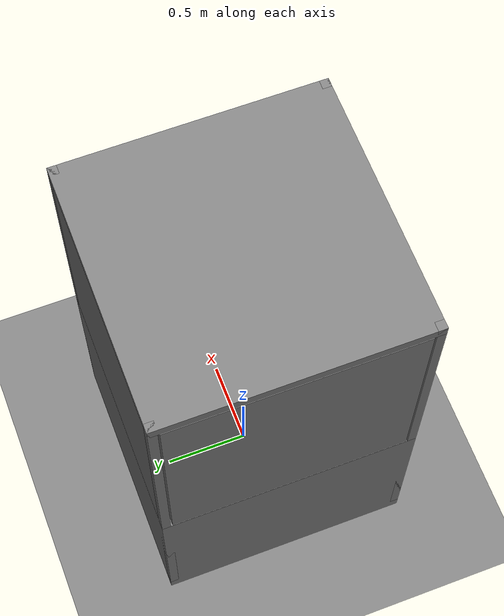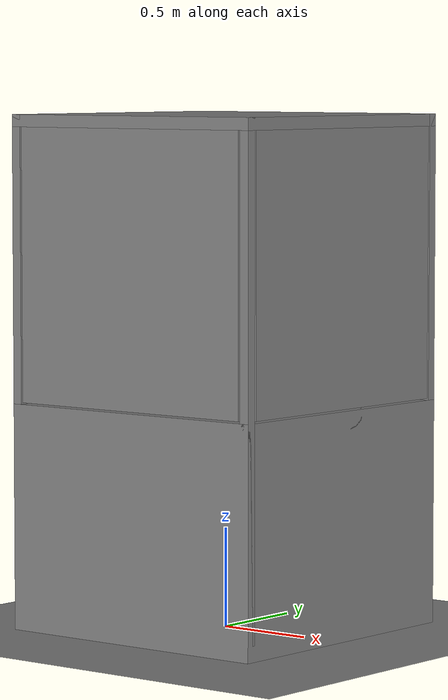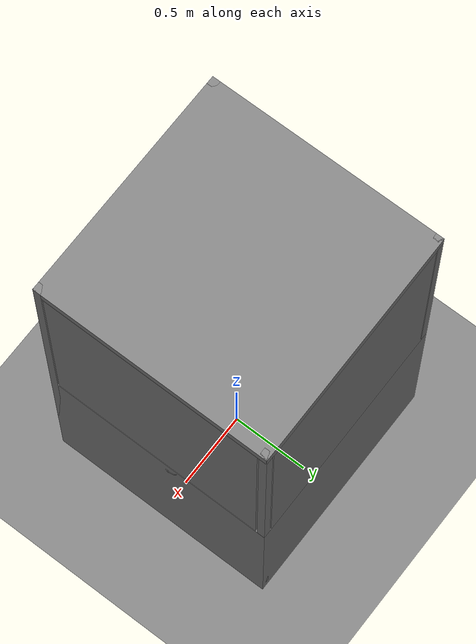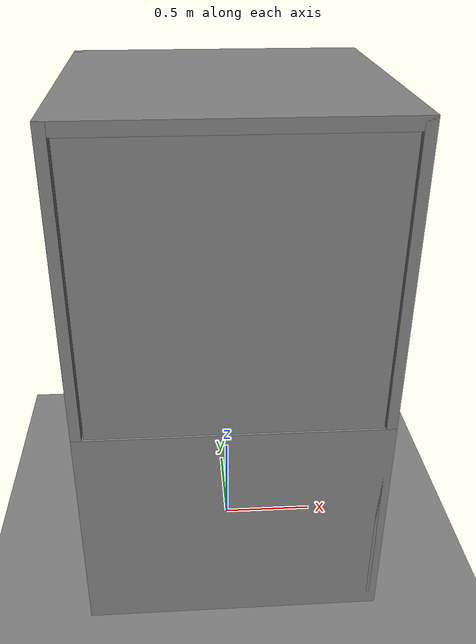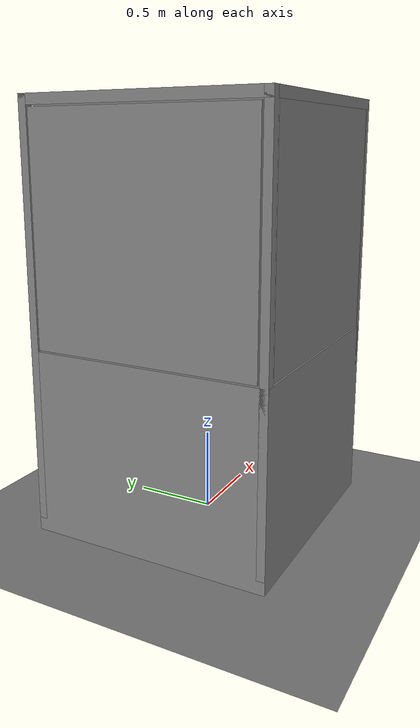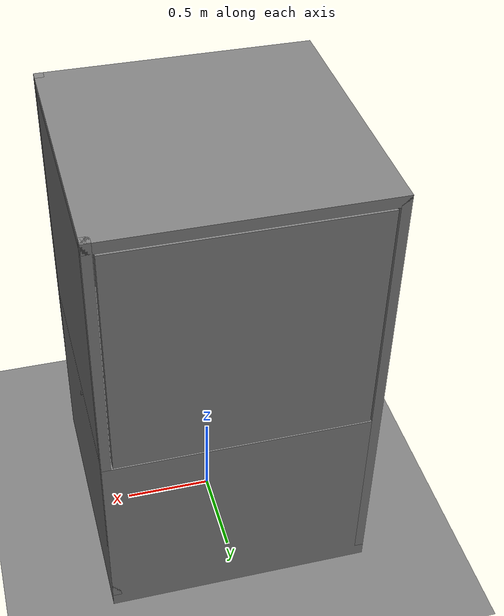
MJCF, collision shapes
<mujoco model="aic_world">
  <compiler angle="radian"/>

  <option gravity="0 0 -9.8" magnetic="5.5645e-06 2.28758e-05 -4.23884e-05"/>

  <visual>
    <headlight ambient="0 0 0" diffuse="0 0 0" specular="0 0 0"/>
  </visual>

  <default>
    <default class="world_default"/>
    <default class="cable_default">
      <joint damping="0.1"/>
    </default>
  </default>

  <extension>
    <plugin plugin="mujoco.elasticity.cable">
      <instance name="composite">
        <config key="twist" value="1e2"/>
        <config key="bend" value="4e1"/>
      </instance>
    </plugin>
  </extension>

  <asset>
    <texture type="2d" colorspace="linear" name="texture_6134dea747d444d9fb5f9afccdccd179a5c3afbe209ed6fdaedcbd8639717e9a_floor_visual_Plane" file="6134dea747d444d9fb5f9afccdccd179a5c3afbe209ed6fdaedcbd8639717e9a_floor_visual_b3a94635-54d6beff6424435d3828cb4c8a1278d9ea3964b0.png"/>
    <texture type="2d" colorspace="linear" name="texture_1a8d320a5d570ec6df97fbb8031a6b90f8651400f3185bf3b33f7e5cf29fb96e_sc_plug_visual_merged_0" file="1a8d320a5d570ec6df97fbb8031a6b90f8651400f3185bf3b33f7e5cf29fb96e_sc_plug_visual_5875f865-48f62b2f4840d852c7f39a01e6c183037dc1485b.png"/>
    <texture type="2d" colorspace="linear" name="texture_3c71e6fdde3349dbfec37505120cc036c9a09c068036dcd865c1ff3d0336a4d3_lc_plug_visual_merged_0" file="3c71e6fdde3349dbfec37505120cc036c9a09c068036dcd865c1ff3d0336a4d3_lc_plug_visual_03dabf32-0905e8a8aa368516e682f6ec84258100cdb4efef.png"/>
    <texture type="2d" colorspace="linear" name="texture_afe088fe8fb1373dee592578e0901b7a74fc4c287a45a74ecb852e563b4cc83e_sfp_module_visual_Body.005" file="afe088fe8fb1373dee592578e0901b7a74fc4c287a45a74ecb852e563b4cc83e_sfp_module_visual_8fc63b58-7471eafc55dcb668ae68adfe70a147b363ba3be9.png"/>
    <texture type="2d" colorspace="linear" name="texture_afe088fe8fb1373dee592578e0901b7a74fc4c287a45a74ecb852e563b4cc83e_sfp_module_visual_Body.005_1" file="afe088fe8fb1373dee592578e0901b7a74fc4c287a45a74ecb852e563b4cc83e_sfp_module_visual_1f09e86a-a4dc4a72bd6e778067310898a5c179607fd78966.png"/>
    <material name="material_f81430f844b7fdcbe82ef96ca64dddb6e07a165b85771d251fb3654027d6cc5b_enclosure_visual_V1014952.001" class="world_default" shininess="30" rgba="0.290196 0.290196 0.290196 1"/>
    <material name="material_f81430f844b7fdcbe82ef96ca64dddb6e07a165b85771d251fb3654027d6cc5b_enclosure_visual_V1014952.001_1" class="world_default" shininess="30" rgba="0.129412 0.129412 0.133333 1"/>
    <material name="material_f81430f844b7fdcbe82ef96ca64dddb6e07a165b85771d251fb3654027d6cc5b_light_visual_Plane.001" class="world_default" shininess="30" rgba="0.5 0.5 0.5 1"/>
    <material name="material_6134dea747d444d9fb5f9afccdccd179a5c3afbe209ed6fdaedcbd8639717e9a_floor_visual_Plane" class="world_default" texture="texture_6134dea747d444d9fb5f9afccdccd179a5c3afbe209ed6fdaedcbd8639717e9a_floor_visual_Plane" shininess="30" rgba="0.5 0.5 0.5 1"/>
    <material name="material_6134dea747d444d9fb5f9afccdccd179a5c3afbe209ed6fdaedcbd8639717e9a_walls_visual_Curve.001" class="world_default" shininess="30" rgba="0.0196078 0.0196078 0.0196078 1"/>
    <material name="material_6134dea747d444d9fb5f9afccdccd179a5c3afbe209ed6fdaedcbd8639717e9a_walls_visual_merged_1" class="world_default" shininess="30" rgba="0.262745 0.262745 0.262745 1"/>
    <material name="material_6134dea747d444d9fb5f9afccdccd179a5c3afbe209ed6fdaedcbd8639717e9a_walls_visual_Plane.003_1" class="world_default" shininess="30" rgba="0.8 0.8 0.8 1"/>
    <material name="material_6134dea747d444d9fb5f9afccdccd179a5c3afbe209ed6fdaedcbd8639717e9a_walls_visual_Plane.002" class="world_default" shininess="30" rgba="0.207843 0.207843 0.207843 1"/>
    <material name="material_adc5cf37bbd3c376b4a080ef391065cbfbfa5092e17bbd6a523fbf7f969d9ef2_base_visual_ISO_4762_-_M3_x_8.019" class="world_default" shininess="30" rgba="0.0352941 0.0352941 0.0313726 1"/>
    <material name="material_adc5cf37bbd3c376b4a080ef391065cbfbfa5092e17bbd6a523fbf7f969d9ef2_base_visual_ISO_4762_-_M3_x_8.019_1" class="world_default" shininess="30" rgba="0.0313726 0.0313726 0.0313726 1"/>
    <material name="material_adc5cf37bbd3c376b4a080ef391065cbfbfa5092e17bbd6a523fbf7f969d9ef2_base_visual_ISO_4762_-_M3_x_8.019_2" class="world_default" shininess="30" rgba="0.215686 0 0.215686 1"/>
    <material name="material_1a8d320a5d570ec6df97fbb8031a6b90f8651400f3185bf3b33f7e5cf29fb96e_sc_plug_visual_merged_0" class="world_default" texture="texture_1a8d320a5d570ec6df97fbb8031a6b90f8651400f3185bf3b33f7e5cf29fb96e_sc_plug_visual_merged_0" shininess="30" rgba="0.5 0.5 0.5 1"/>
    <material name="material_3c71e6fdde3349dbfec37505120cc036c9a09c068036dcd865c1ff3d0336a4d3_lc_plug_visual_merged_0" class="world_default" texture="texture_3c71e6fdde3349dbfec37505120cc036c9a09c068036dcd865c1ff3d0336a4d3_lc_plug_visual_merged_0" shininess="30" rgba="0.5 0.5 0.5 1"/>
    <material name="material_afe088fe8fb1373dee592578e0901b7a74fc4c287a45a74ecb852e563b4cc83e_sfp_module_visual_Body.005" class="world_default" texture="texture_afe088fe8fb1373dee592578e0901b7a74fc4c287a45a74ecb852e563b4cc83e_sfp_module_visual_Body.005" shininess="30" rgba="0.5 0.5 0.5 1"/>
    <material name="material_afe088fe8fb1373dee592578e0901b7a74fc4c287a45a74ecb852e563b4cc83e_sfp_module_visual_Body.005_1" class="world_default" texture="texture_afe088fe8fb1373dee592578e0901b7a74fc4c287a45a74ecb852e563b4cc83e_sfp_module_visual_Body.005_1" shininess="30" rgba="0.5 0.5 0.5 1"/>
    <mesh name="f81430f844b7fdcbe82ef96ca64dddb6e07a165b85771d251fb3654027d6cc5b_enclosure_visual_V1014952.001" class="world_default" content_type="model/obj" file="f81430f844b7fdcbe82ef96ca64dddb6e07a165b85771d251fb3654027d6cc5b_enclosure_visual_V1014952.001-c990efe7b9dfe87aa065fd6eb3960ce051ae2aef.obj" inertia="shell"/>
    <mesh name="f81430f844b7fdcbe82ef96ca64dddb6e07a165b85771d251fb3654027d6cc5b_enclosure_visual_V1014952.001_1" class="world_default" content_type="model/obj" file="f81430f844b7fdcbe82ef96ca64dddb6e07a165b85771d251fb3654027d6cc5b_enclosure_visual_V1014952.001_1-807e07de06af157c84b994a232617507a7059420.obj" inertia="shell"/>
    <mesh name="f81430f844b7fdcbe82ef96ca64dddb6e07a165b85771d251fb3654027d6cc5b_light_visual_Plane.001" class="world_default" content_type="model/obj" file="f81430f844b7fdcbe82ef96ca64dddb6e07a165b85771d251fb3654027d6cc5b_light_visual_Plane.001-a8a774a80bc239d73769a498eae528b206eebcb0.obj" inertia="shell"/>
    <mesh name="6134dea747d444d9fb5f9afccdccd179a5c3afbe209ed6fdaedcbd8639717e9a_floor_visual_Plane" class="world_default" content_type="model/obj" file="6134dea747d444d9fb5f9afccdccd179a5c3afbe209ed6fdaedcbd8639717e9a_floor_visual_Plane-4dc7f6150ad7c239769a0860a01efb2015657aea.obj" inertia="shell"/>
    <mesh name="6134dea747d444d9fb5f9afccdccd179a5c3afbe209ed6fdaedcbd8639717e9a_walls_visual_Curve.001" class="world_default" content_type="model/obj" file="6134dea747d444d9fb5f9afccdccd179a5c3afbe209ed6fdaedcbd8639717e9a_walls_visual_Curve.001-4d7c79ac2e958832fdb15589262141ca1b80d3a5.obj" inertia="shell"/>
    <mesh name="6134dea747d444d9fb5f9afccdccd179a5c3afbe209ed6fdaedcbd8639717e9a_walls_visual_merged_1" class="world_default" content_type="model/obj" file="6134dea747d444d9fb5f9afccdccd179a5c3afbe209ed6fdaedcbd8639717e9a_walls_visual_merged_1-359a22140d528747936e80bedf90e1437a177a9f.obj" inertia="shell"/>
    <mesh name="6134dea747d444d9fb5f9afccdccd179a5c3afbe209ed6fdaedcbd8639717e9a_walls_visual_Plane.003_1" class="world_default" content_type="model/obj" file="6134dea747d444d9fb5f9afccdccd179a5c3afbe209ed6fdaedcbd8639717e9a_walls_visual_Plane.003_1-cd05ed21fa19a2784fb772d7519abf7c31c8b85f.obj" inertia="shell"/>
    <mesh name="6134dea747d444d9fb5f9afccdccd179a5c3afbe209ed6fdaedcbd8639717e9a_walls_visual_Plane.002" class="world_default" content_type="model/obj" file="6134dea747d444d9fb5f9afccdccd179a5c3afbe209ed6fdaedcbd8639717e9a_walls_visual_Plane.002-ee4f781765eec46c2256d941981732d4b1857f24.obj" inertia="shell"/>
    <mesh name="adc5cf37bbd3c376b4a080ef391065cbfbfa5092e17bbd6a523fbf7f969d9ef2_base_visual_ISO_4762_-_M3_x_8.019" class="world_default" content_type="model/obj" file="adc5cf37bbd3c376b4a080ef391065cbfbfa5092e17bbd6a523fbf7f969d9ef2_base_visual_ISO_4762_-_M3_x_8.019-f814bb518c42769543ab6246809f3fe4af5c2b64.obj" inertia="shell"/>
    <mesh name="adc5cf37bbd3c376b4a080ef391065cbfbfa5092e17bbd6a523fbf7f969d9ef2_base_visual_ISO_4762_-_M3_x_8.019_1" class="world_default" content_type="model/obj" file="adc5cf37bbd3c376b4a080ef391065cbfbfa5092e17bbd6a523fbf7f969d9ef2_base_visual_ISO_4762_-_M3_x_8.019_1-0b276ba9910a7642121235b62d2afc47c3995782.obj" inertia="shell"/>
    <mesh name="adc5cf37bbd3c376b4a080ef391065cbfbfa5092e17bbd6a523fbf7f969d9ef2_base_visual_ISO_4762_-_M3_x_8.019_2" class="world_default" content_type="model/obj" file="adc5cf37bbd3c376b4a080ef391065cbfbfa5092e17bbd6a523fbf7f969d9ef2_base_visual_ISO_4762_-_M3_x_8.019_2-7b96569be9572803417c5650ee83c9c883b44191.obj" inertia="shell"/>
    <mesh name="1a8d320a5d570ec6df97fbb8031a6b90f8651400f3185bf3b33f7e5cf29fb96e_sc_plug_visual_merged_0" class="world_default" content_type="model/obj" file="1a8d320a5d570ec6df97fbb8031a6b90f8651400f3185bf3b33f7e5cf29fb96e_sc_plug_visual_merged_0-67f94accf247f722dd4954d7448d7956402901f2.obj" inertia="shell"/>
    <mesh name="3c71e6fdde3349dbfec37505120cc036c9a09c068036dcd865c1ff3d0336a4d3_lc_plug_visual_merged_0" class="world_default" content_type="model/obj" file="3c71e6fdde3349dbfec37505120cc036c9a09c068036dcd865c1ff3d0336a4d3_lc_plug_visual_merged_0-fdaf59710fc3cc118a7df05add4ff4205edda4ef.obj" inertia="shell"/>
    <mesh name="afe088fe8fb1373dee592578e0901b7a74fc4c287a45a74ecb852e563b4cc83e_sfp_module_visual_Body.005" class="world_default" content_type="model/obj" file="afe088fe8fb1373dee592578e0901b7a74fc4c287a45a74ecb852e563b4cc83e_sfp_module_visual_Body.005-f93147e1e403de321fb70c06a4b1e00f20feb9fd.obj" inertia="shell"/>
    <mesh name="afe088fe8fb1373dee592578e0901b7a74fc4c287a45a74ecb852e563b4cc83e_sfp_module_visual_Body.005_1" class="world_default" content_type="model/obj" file="afe088fe8fb1373dee592578e0901b7a74fc4c287a45a74ecb852e563b4cc83e_sfp_module_visual_Body.005_1-4af964a95522e2593eb6381eca4f09ef239782c7.obj" inertia="shell"/>
  </asset>

  <worldbody>
    <light name="enclosure_light" class="world_default" pos="0 0 2.5" dir="0 0 -1" intensity="0.4" range="2" attenuation="1 0.01 0.001" cutoff="114.592" exponent="0.993023" diffuse="1 1 1" specular="0.1 0.1 0.1"/>
    <light name="ceiling_01" class="world_default" pos="2 2 6" dir="0 0 -1" intensity="2" range="9" castshadow="false" attenuation="1 0.01 0.001" cutoff="360" diffuse="1 1 1" specular="0.1 0.1 0.1"/>
    <light name="ceiling_02" class="world_default" pos="-2 -2 6" dir="0 0 -1" intensity="2" range="9" castshadow="false" attenuation="1 0.01 0.001" cutoff="360" diffuse="1 1 1" specular="0.1 0.1 0.1"/>
    <body name="enclosure_link">
      <inertial pos="0 0 0" mass="1" diaginertia="1 1 1"/>
      <geom name="v1015026001_collider_box" class="world_default" size="0.75 0.569492 0.75" pos="-0.010998 0.009283 0.569706" quat="1.22475e-07 -1.22474e-07 0.707107 0.707107" type="box" group="3"/>
      <geom name="v1015028001_collider_box" class="world_default" size="0.0254 0.0254 1.25" pos="0.713602 0.733883 1.3292" quat="1.73205e-07 0 0 -1" type="box" group="3"/>
      <geom name="v1015013001_collider_box" class="world_default" size="0.0304 0.75 0.75" pos="-0.010998 0.009283 2.5488" quat="0.707107 0 -0.707107 0" type="box" group="3"/>
      <geom name="v1015027_collider_box" class="world_default" size="0.0254 0.0254 1.25" pos="-0.735598 0.733883 1.3292" quat="1.73205e-07 0 0 -1" type="box" group="3"/>
      <geom name="v1015029_collider_box" class="world_default" size="0.0254 0.0254 1.25" pos="-0.735598 -0.715317 1.3292" quat="0 1.73205e-07 -1 -1.73205e-07" type="box" group="3"/>
      <geom name="v1015030_collider_box" class="world_default" size="0.0254 0.0254 1.25" pos="0.713602 -0.715317 1.3292" quat="1.73205e-07 0 0 -1" type="box" group="3"/>
      <geom name="enclosure_visual" class="world_default" type="mesh" contype="0" conaffinity="0" material="material_f81430f844b7fdcbe82ef96ca64dddb6e07a165b85771d251fb3654027d6cc5b_enclosure_visual_V1014952.001" mesh="f81430f844b7fdcbe82ef96ca64dddb6e07a165b85771d251fb3654027d6cc5b_enclosure_visual_V1014952.001"/>
      <geom name="enclosure_visual_0" class="world_default" type="mesh" contype="0" conaffinity="0" material="material_f81430f844b7fdcbe82ef96ca64dddb6e07a165b85771d251fb3654027d6cc5b_enclosure_visual_V1014952.001_1" mesh="f81430f844b7fdcbe82ef96ca64dddb6e07a165b85771d251fb3654027d6cc5b_enclosure_visual_V1014952.001_1"/>
      <geom name="light_visual" class="world_default" type="mesh" contype="0" conaffinity="0" material="material_f81430f844b7fdcbe82ef96ca64dddb6e07a165b85771d251fb3654027d6cc5b_light_visual_Plane.001" mesh="f81430f844b7fdcbe82ef96ca64dddb6e07a165b85771d251fb3654027d6cc5b_light_visual_Plane.001"/>
    </body>
    <body name="enclosure_walls_link">
      <inertial pos="0 0 0" mass="1" diaginertia="1 1 1"/>
      <geom name="v1015062006_collider_box" class="world_default" size="0.0250005 0.6796 0.6892" pos="-0.010998 0.734284 1.8288" quat="0.5 0.5 -0.5 -0.5" type="box" group="3"/>
      <geom name="v1015062005_collider_box" class="world_default" size="0.6892 0.6796 0.025" pos="-0.735998 0.009283 1.8288" quat="0.5 0.5 -0.5 -0.5" type="box" group="3"/>
      <geom name="v1015062007_collider_box" class="world_default" size="0.025 0.6846 0.6892" pos="-0.010998 -0.715717 1.8338" quat="0.5 0.5 -0.5 -0.5" type="box" group="3"/>
      <geom name="v1015062008_collider_box" class="world_default" size="0.6892 0.6846 0.025" pos="0.714002 0.009283 1.8338" quat="0.5 0.5 -0.5 -0.5" type="box" group="3"/>
    </body>
    <body name="floor_link">
      <inertial pos="0 0 0" mass="1" diaginertia="1 1 1"/>
      <geom name="floor_cylinder" class="world_default" size="5 5 1" type="plane" group="3"/>
      <geom name="floor_visual" class="world_default" type="mesh" contype="0" conaffinity="0" material="material_6134dea747d444d9fb5f9afccdccd179a5c3afbe209ed6fdaedcbd8639717e9a_floor_visual_Plane" mesh="6134dea747d444d9fb5f9afccdccd179a5c3afbe209ed6fdaedcbd8639717e9a_floor_visual_Plane"/>
      <geom name="walls_visual" class="world_default" type="mesh" contype="0" conaffinity="0" material="material_6134dea747d444d9fb5f9afccdccd179a5c3afbe209ed6fdaedcbd8639717e9a_walls_visual_Curve.001" mesh="6134dea747d444d9fb5f9afccdccd179a5c3afbe209ed6fdaedcbd8639717e9a_walls_visual_Curve.001"/>
      <geom name="walls_visual_0" class="world_default" type="mesh" contype="0" conaffinity="0" material="material_6134dea747d444d9fb5f9afccdccd179a5c3afbe209ed6fdaedcbd8639717e9a_walls_visual_merged_1" mesh="6134dea747d444d9fb5f9afccdccd179a5c3afbe209ed6fdaedcbd8639717e9a_walls_visual_merged_1"/>
      <geom name="walls_visual_1" class="world_default" type="mesh" contype="0" conaffinity="0" material="material_6134dea747d444d9fb5f9afccdccd179a5c3afbe209ed6fdaedcbd8639717e9a_walls_visual_Plane.003_1" mesh="6134dea747d444d9fb5f9afccdccd179a5c3afbe209ed6fdaedcbd8639717e9a_walls_visual_Plane.003_1"/>
      <geom name="walls_visual_2" class="world_default" type="mesh" contype="0" conaffinity="0" material="material_6134dea747d444d9fb5f9afccdccd179a5c3afbe209ed6fdaedcbd8639717e9a_walls_visual_Plane.002" mesh="6134dea747d444d9fb5f9afccdccd179a5c3afbe209ed6fdaedcbd8639717e9a_walls_visual_Plane.002"/>
    </body>
    <body name="task_board_base_link" pos="0.15 -0.2 1.14" quat="4.63268e-05 0 0 1">
      <inertial pos="0 0 0" mass="5" diaginertia="0.1 0.1 0.1"/>
      <geom name="task_board_base_link_fixed_joint_lump__v1015083001_collider_box_left_collision" class="world_default" size="0.15 0.114 0.0045" pos="0 -0.1 0.0075" type="box" group="3"/>
      <geom name="task_board_base_link_fixed_joint_lump__v1015083001_collider_right_collision_1" class="world_default" size="0.15 0.0635 0.0045" pos="0 0.149 0.0075" type="box" group="3"/>
      <geom name="task_board_base_link_fixed_joint_lump__v1015083001_collider_mid_collision_2" class="world_default" size="0.07 0.006 0.0045" pos="-0.075 0.05 0.0075" type="box" group="3"/>
      <geom name="task_board_base_link_fixed_joint_lump__v1015083001_collider_bottom_collision_3" class="world_default" size="0.0825 0.2125 0.0045" pos="0.068 0 0.0075" type="box" group="3"/>
      <geom name="task_board_base_link_fixed_joint_lump__v1015083001_collider_top_collision_4" class="world_default" size="0.0075 0.2125 0.0045" pos="-0.143 0 0.0075" type="box" group="3"/>
      <geom name="task_board_base_link_fixed_joint_lump__base_visual_visual" class="world_default" type="mesh" contype="0" conaffinity="0" material="material_adc5cf37bbd3c376b4a080ef391065cbfbfa5092e17bbd6a523fbf7f969d9ef2_base_visual_ISO_4762_-_M3_x_8.019" mesh="adc5cf37bbd3c376b4a080ef391065cbfbfa5092e17bbd6a523fbf7f969d9ef2_base_visual_ISO_4762_-_M3_x_8.019"/>
      <geom name="task_board_base_link_fixed_joint_lump__base_visual_visual_0" class="world_default" type="mesh" contype="0" conaffinity="0" material="material_adc5cf37bbd3c376b4a080ef391065cbfbfa5092e17bbd6a523fbf7f969d9ef2_base_visual_ISO_4762_-_M3_x_8.019_1" mesh="adc5cf37bbd3c376b4a080ef391065cbfbfa5092e17bbd6a523fbf7f969d9ef2_base_visual_ISO_4762_-_M3_x_8.019_1"/>
      <geom name="task_board_base_link_fixed_joint_lump__base_visual_visual_1" class="world_default" type="mesh" contype="0" conaffinity="0" material="material_adc5cf37bbd3c376b4a080ef391065cbfbfa5092e17bbd6a523fbf7f969d9ef2_base_visual_ISO_4762_-_M3_x_8.019_2" mesh="adc5cf37bbd3c376b4a080ef391065cbfbfa5092e17bbd6a523fbf7f969d9ef2_base_visual_ISO_4762_-_M3_x_8.019_2"/>
    </body>
    <body name="cable_end_0" childclass="cable_default" pos="0.171400 0.020606 1.511889" quat="0.712741 0.312130 -0.052173 0.625982">
      <freejoint name="cable_end_0_free"/>
      <inertial pos="0 0 0" mass="0.0025" diaginertia="1e-6 1e-6 1e-6"/>
      <geom name="base_vis" class="world_default" size="0.002" contype="0" conaffinity="0"/>
      <plugin instance="composite"/>
      <body name="cable_connection_0" pos="5.15713e-08 6.61488e-08 -5.47256e-08" quat="0.710769 -0.363777 -0.194117 0.569905">
        <inertial pos="0 0 0" mass="0.01" diaginertia="1e-6 1e-6 1e-6"/>
        <joint name="joint_connection_end_0" class="world_default" pos="0 0 0" type="ball" damping="0.2"/>
        <geom name="visual_0_0" class="world_default" size="0.001 0.00180278" pos="-0.00180278 0.002 0" quat="0.676768 0.204909 0.676764 -0.204908" type="cylinder" contype="0" conaffinity="0"/>
        <geom name="visual_1_0" class="world_default" size="0.001 0.00180278" pos="-0.00180278 -0.002 0" quat="0.676768 -0.204909 0.676764 0.204908" type="cylinder" contype="0" conaffinity="0"/>
        <plugin instance="composite"/>
        <body name="link_1" pos="-0.0132222 0.00112661 -0.0199977" quat="0.211137 -0.710188 -0.642067 0.196988">
          <inertial pos="0 0 0" mass="0.0025" diaginertia="1e-6 1e-6 1e-6"/>
          <joint name="joint_end_0" pos="0 0 -0.024" type="ball"/>
          <geom name="link_1_collision" size="0.002 0.018" pos="0 0 0.006" type="cylinder" group="3"/>
          <geom name="sphere_1_collision" size="0.002" pos="0 0 0.024" group="3"/>
          <geom name="link_1_vis" size="0.002 0.024" type="cylinder" contype="0" conaffinity="0"/>
          <geom name="sphere_1_vis" size="0.002" pos="0 0 0.024" contype="0" conaffinity="0"/>
          <plugin instance="composite"/>
          <body name="link_2" pos="0.00424237 -0.00652802 0.0467027" quat="0.981216 0.127988 0.103225 -0.100887">
            <inertial pos="0 0 0" mass="0.0025" diaginertia="1e-6 1e-6 1e-6"/>
            <joint name="joint_1" pos="0 0 -0.024" type="ball"/>
            <geom name="link_2_collision" size="0.002 0.024" type="cylinder" group="3"/>
            <geom name="sphere_2_collision" size="0.002" pos="0 0 0.024" group="3"/>
            <geom name="link_2_vis" size="0.002 0.024" type="cylinder" contype="0" conaffinity="0"/>
            <geom name="sphere_2_vis" size="0.002" pos="0 0 0.024" contype="0" conaffinity="0"/>
            <plugin instance="composite"/>
            <body name="link_3" pos="0.000227826 -0.00319285 0.0477859" quat="0.99761 0.0665704 0.00591828 -0.0175364">
              <inertial pos="0 0 0" mass="0.0025" diaginertia="1e-6 1e-6 1e-6"/>
              <joint name="joint_2" pos="0 0 -0.024" type="ball"/>
              <geom name="link_3_collision" size="0.002 0.024" type="cylinder" group="3"/>
              <geom name="sphere_3_collision" size="0.002" pos="0 0 0.024" group="3"/>
              <geom name="link_3_vis" size="0.002 0.024" type="cylinder" contype="0" conaffinity="0"/>
              <geom name="sphere_3_vis" size="0.002" pos="0 0 0.024" contype="0" conaffinity="0"/>
              <plugin instance="composite"/>
              <body name="link_4" pos="-0.000837024 -0.00145485 0.0479414" quat="0.999366 0.0304441 -0.017249 -0.00664866">
                <inertial pos="0 0 0" mass="0.0025" diaginertia="1e-6 1e-6 1e-6"/>
                <joint name="joint_3" pos="0 0 -0.024" type="ball"/>
                <geom name="link_4_collision" size="0.002 0.024" type="cylinder" group="3"/>
                <geom name="sphere_4_collision" size="0.002" pos="0 0 0.024" group="3"/>
                <geom name="link_4_vis" size="0.002 0.024" type="cylinder" contype="0" conaffinity="0"/>
                <geom name="sphere_4_vis" size="0.002" pos="0 0 0.024" contype="0" conaffinity="0"/>
                <plugin instance="composite"/>
                <body name="link_5" pos="-0.0016282 -0.00085597 0.0479299" quat="0.999066 0.0185198 -0.0335813 -0.0199245">
                  <inertial pos="0 0 0" mass="0.0025" diaginertia="1e-6 1e-6 1e-6"/>
                  <joint name="joint_4" pos="0 0 -0.024" type="ball"/>
                  <geom name="link_5_collision" size="0.002 0.024" type="cylinder" group="3"/>
                  <geom name="sphere_5_collision" size="0.002" pos="0 0 0.024" group="3"/>
                  <geom name="link_5_vis" size="0.002 0.024" type="cylinder" contype="0" conaffinity="0"/>
                  <geom name="sphere_5_vis" size="0.002" pos="0 0 0.024" contype="0" conaffinity="0"/>
                  <plugin instance="composite"/>
                  <body name="link_6" pos="-0.00224501 -0.000554162 0.0478886" quat="0.997676 0.0138063 -0.0462316 -0.0481175">
                    <inertial pos="0 0 0" mass="0.0025" diaginertia="1e-6 1e-6 1e-6"/>
                    <joint name="joint_5" pos="0 0 -0.024" type="ball"/>
                    <geom name="link_6_collision" size="0.002 0.024" type="cylinder" group="3"/>
                    <geom name="sphere_6_collision" size="0.002" pos="0 0 0.024" group="3"/>
                    <geom name="link_6_vis" size="0.002 0.024" type="cylinder" contype="0" conaffinity="0"/>
                    <geom name="sphere_6_vis" size="0.002" pos="0 0 0.024" contype="0" conaffinity="0"/>
                    <plugin instance="composite"/>
                    <body name="link_7" pos="-0.00247937 -0.000305372 0.0478703" quat="0.995446 0.0104804 -0.0510525 -0.0798245">
                      <inertial pos="0 0 0" mass="0.0025" diaginertia="1e-6 1e-6 1e-6"/>
                      <joint name="joint_6" pos="0 0 -0.024" type="ball"/>
                      <geom name="link_7_collision" size="0.002 0.024" type="cylinder" group="3"/>
                      <geom name="sphere_7_collision" size="0.002" pos="0 0 0.024" group="3"/>
                      <geom name="link_7_vis" size="0.002 0.024" type="cylinder" contype="0" conaffinity="0"/>
                      <geom name="sphere_7_vis" size="0.002" pos="0 0 0.024" contype="0" conaffinity="0"/>
                      <plugin instance="composite"/>
                      <body name="link_8" pos="-0.00204741 1.76124e-05 0.0479131" quat="0.993665 0.00406788 -0.0425017 -0.103956">
                        <inertial pos="0 0 0" mass="0.0025" diaginertia="1e-6 1e-6 1e-6"/>
                        <joint name="joint_7" pos="0 0 -0.024" type="ball"/>
                        <geom name="link_8_collision" size="0.002 0.024" type="cylinder" group="3"/>
                        <geom name="sphere_8_collision" size="0.002" pos="0 0 0.024" group="3"/>
                        <geom name="link_8_vis" size="0.002 0.024" type="cylinder" contype="0" conaffinity="0"/>
                        <geom name="sphere_8_vis" size="0.002" pos="0 0 0.024" contype="0" conaffinity="0"/>
                        <plugin instance="composite"/>
                        <body name="link_9" pos="-0.0011846 0.000459328 0.0479676" quat="0.993296 -0.00673285 -0.0256095 -0.112522">
                          <inertial pos="0 0 0" mass="0.0025" diaginertia="1e-6 1e-6 1e-6"/>
                          <joint name="joint_8" pos="0 0 -0.024" type="ball"/>
                          <geom name="link_9_collision" size="0.002 0.024" type="cylinder" group="3"/>
                          <geom name="sphere_9_collision" size="0.002" pos="0 0 0.024" group="3"/>
                          <geom name="link_9_vis" size="0.002 0.024" type="cylinder" contype="0" conaffinity="0"/>
                          <geom name="sphere_9_vis" size="0.002" pos="0 0 0.024" contype="0" conaffinity="0"/>
                          <plugin instance="composite"/>
                          <body name="link_10" pos="-0.000444826 0.000978271 0.0479762" quat="0.993988 -0.0192546 -0.0114077 -0.107177">
                            <inertial pos="0 0 0" mass="0.0025" diaginertia="1e-6 1e-6 1e-6"/>
                            <joint name="joint_9" pos="0 0 -0.024" type="ball"/>
                            <geom name="link_10_collision" size="0.002 0.024" type="cylinder" group="3"/>
                            <geom name="sphere_10_collision" size="0.002" pos="0 0 0.024" group="3"/>
                            <geom name="link_10_vis" size="0.002 0.024" type="cylinder" contype="0" conaffinity="0"/>
                            <geom name="sphere_10_vis" size="0.002" pos="0 0 0.024" contype="0" conaffinity="0"/>
                            <plugin instance="composite"/>
                            <body name="link_11" pos="0.000713011 0.00164546 0.047934" quat="0.993979 -0.035654 0.0112388 -0.102994">
                              <inertial pos="0 0 0" mass="0.0025" diaginertia="1e-6 1e-6 1e-6"/>
                              <joint name="joint_10" pos="0 0 -0.024" type="ball"/>
                              <geom name="link_11_collision" size="0.002 0.024" type="cylinder" group="3"/>
                              <geom name="sphere_11_collision" size="0.002" pos="0 0 0.024" group="3"/>
                              <geom name="link_11_vis" size="0.002 0.024" type="cylinder" contype="0" conaffinity="0"/>
                              <geom name="sphere_11_vis" size="0.002" pos="0 0 0.024" contype="0" conaffinity="0"/>
                              <plugin instance="composite"/>
                              <body name="link_12" pos="0.00190959 0.00255934 0.0477882" quat="0.994762 -0.0563732 0.0355977 -0.0774759">
                                <inertial pos="0 0 0" mass="0.0025" diaginertia="1e-6 1e-6 1e-6"/>
                                <joint name="joint_11" pos="0 0 -0.024" type="ball"/>
                                <geom name="link_12_collision" size="0.002 0.024" type="cylinder" group="3"/>
                                <geom name="sphere_12_collision" size="0.002" pos="0 0 0.024" group="3"/>
                                <geom name="link_12_vis" size="0.002 0.024" type="cylinder" contype="0" conaffinity="0"/>
                                <geom name="sphere_12_vis" size="0.002" pos="0 0 0.024" contype="0" conaffinity="0"/>
                                <plugin instance="composite"/>
                                <body name="link_13" pos="0.00254917 0.0033152 0.0476333" quat="0.994974 -0.0718539 0.0498337 -0.0487918">
                                  <inertial pos="0 0 0" mass="0.0025" diaginertia="1e-6 1e-6 1e-6"/>
                                  <joint name="joint_12" pos="0 0 -0.024" type="ball"/>
                                  <geom name="link_13_collision" size="0.002 0.024" type="cylinder" group="3"/>
                                  <geom name="sphere_13_collision" size="0.002" pos="0 0 0.024" group="3"/>
                                  <geom name="link_13_vis" size="0.002 0.024" type="cylinder" contype="0" conaffinity="0"/>
                                  <geom name="sphere_13_vis" size="0.002" pos="0 0 0.024" contype="0" conaffinity="0"/>
                                  <plugin instance="composite"/>
                                  <body name="link_14" pos="0.00314703 0.00414271 0.04743" quat="0.993797 -0.0882534 0.0640211 -0.0219143">
                                    <inertial pos="0 0 0" mass="0.0025" diaginertia="1e-6 1e-6 1e-6"/>
                                    <joint name="joint_13" pos="0 0 -0.024" type="ball"/>
                                    <geom name="link_14_collision" size="0.002 0.024" type="cylinder" group="3"/>
                                    <geom name="sphere_14_collision" size="0.002" pos="0 0 0.024" group="3"/>
                                    <geom name="link_14_vis" size="0.002 0.024" type="cylinder" contype="0" conaffinity="0"/>
                                    <geom name="sphere_14_vis" size="0.002" pos="0 0 0.024" contype="0" conaffinity="0"/>
                                    <plugin instance="composite"/>
                                    <body name="link_15" pos="0.00437214 0.00548124 0.0469537" quat="0.989036 -0.115381 0.0921635 0.00074689">
                                      <inertial pos="0 0 0" mass="0.0025" diaginertia="1e-6 1e-6 1e-6"/>
                                      <joint name="joint_14" pos="0 0 -0.024" type="ball"/>
                                      <geom name="link_15_collision" size="0.002 0.024" type="cylinder" group="3"/>
                                      <geom name="sphere_15_collision" size="0.002" pos="0 0 0.024" group="3"/>
                                      <geom name="link_15_vis" size="0.002 0.024" type="cylinder" contype="0" conaffinity="0"/>
                                      <geom name="sphere_15_vis" size="0.002" pos="0 0 0.024" contype="0" conaffinity="0"/>
                                      <plugin instance="composite"/>
                                      <body name="link_16" pos="0.00600707 0.00670844 0.0462481" quat="0.981411 -0.140122 0.129991 0.0173418">
                                        <inertial pos="0 0 0" mass="0.0025" diaginertia="1e-6 1e-6 1e-6"/>
                                        <joint name="joint_15" pos="0 0 -0.024" type="ball"/>
                                        <geom name="link_16_collision" size="0.002 0.024" type="cylinder" group="3"/>
                                        <geom name="sphere_16_collision" size="0.002" pos="0 0 0.024" group="3"/>
                                        <geom name="link_16_vis" size="0.002 0.024" type="cylinder" contype="0" conaffinity="0"/>
                                        <geom name="sphere_16_vis" size="0.002" pos="0 0 0.024" contype="0" conaffinity="0"/>
                                        <plugin instance="composite"/>
                                        <body name="link_17" pos="0.00715273 0.00641948 0.0459935" quat="0.978495 -0.132383 0.155897 0.0268191">
                                          <inertial pos="0 0 0" mass="0.0025" diaginertia="1e-6 1e-6 1e-6"/>
                                          <joint name="joint_16" pos="0 0 -0.024" type="ball"/>
                                          <geom name="link_17_collision" size="0.002 0.024" type="cylinder" group="3"/>
                                          <geom name="sphere_17_collision" size="0.002" pos="0 0 0.024" group="3"/>
                                          <geom name="link_17_vis" size="0.002 0.024" type="cylinder" contype="0" conaffinity="0"/>
                                          <geom name="sphere_17_vis" size="0.002" pos="0 0 0.024" contype="0" conaffinity="0"/>
                                          <plugin instance="composite"/>
                                          <body name="link_18" pos="0.00731761 0.00426048 0.0464567" quat="0.983405 -0.0858124 0.15744 0.0276286">
                                            <inertial pos="0 0 0" mass="0.0025" diaginertia="1e-6 1e-6 1e-6"/>
                                            <joint name="joint_17" pos="0 0 -0.024" type="ball"/>
                                            <geom name="link_18_collision" size="0.002 0.024" type="cylinder" group="3"/>
                                            <geom name="sphere_18_collision" size="0.002" pos="0 0 0.024" group="3"/>
                                            <geom name="link_18_vis" size="0.002 0.024" type="cylinder" contype="0" conaffinity="0"/>
                                            <geom name="sphere_18_vis" size="0.002" pos="0 0 0.024" contype="0" conaffinity="0"/>
                                            <plugin instance="composite"/>
                                            <body name="link_19" pos="0.00739354 0.00184107 0.0467595" quat="0.986798 -0.0358676 0.156786 0.0189933">
                                              <inertial pos="0 0 0" mass="0.0025" diaginertia="1e-6 1e-6 1e-6"/>
                                              <joint name="joint_18" pos="0 0 -0.024" type="ball"/>
                                              <geom name="link_19_collision" size="0.002 0.024" type="cylinder" group="3"/>
                                              <geom name="sphere_19_collision" size="0.002" pos="0 0 0.024" group="3"/>
                                              <geom name="link_19_vis" size="0.002 0.024" type="cylinder" contype="0" conaffinity="0"/>
                                              <geom name="sphere_19_vis" size="0.002" pos="0 0 0.024" contype="0" conaffinity="0"/>
                                              <plugin instance="composite"/>
                                              <body name="link_20" pos="0.00668728 -0.00100254 0.0470298" quat="0.9898 0.0220577 0.14059 0.00667336">
                                                <inertial pos="0 0 0" mass="0.0025" diaginertia="1e-6 1e-6 1e-6"/>
                                                <joint name="joint_19" pos="0 0 -0.024" type="ball"/>
                                                <geom name="link_20_collision" size="0.002 0.024" type="cylinder" group="3"/>
                                                <geom name="sphere_20_collision" size="0.002" pos="0 0 0.024" group="3"/>
                                                <geom name="link_20_vis" size="0.002 0.024" type="cylinder" contype="0" conaffinity="0"/>
                                                <geom name="sphere_20_vis" size="0.002" pos="0 0 0.024" contype="0" conaffinity="0"/>
                                                <plugin instance="composite"/>
                                                <body name="cable_connection_1" pos="1.03302e-06 -2.09657e-07 0.0240002" quat="0.789838 0.0375583 -0.610396 -0.0465034">
                                                  <inertial pos="0 0 0" mass="0.01" diaginertia="4e-4 4e-4 4e-4"/>
                                                  <joint name="joint_connection_end_1" class="world_default" pos="0 0 0" type="ball"/>
                                                  <geom name="collision_0" class="world_default" size="0.001 0.00367636" pos="0.00367636 -0.00425 0" quat="0.673802 0.214463 0.673798 -0.214461" type="cylinder" group="3"/>
                                                  <geom name="collision_1" class="world_default" size="0.001 0.00367636" pos="0.00367636 0.00425 0" quat="0.673802 -0.214463 0.673798 0.214461" type="cylinder" group="3"/>
                                                  <geom name="visual_0" class="world_default" size="0.001 0.00367636" pos="0.00367636 -0.00425 0" quat="0.673802 0.214463 0.673798 -0.214461" type="cylinder" contype="0" conaffinity="0"/>
                                                  <geom name="visual_1" class="world_default" size="0.001 0.00367636" pos="0.00367636 0.00425 0" quat="0.673802 -0.214463 0.673798 0.214461" type="cylinder" contype="0" conaffinity="0"/>
                                                  <plugin instance="composite"/>
                                                  <body name="sc_plug_link" pos="0.052 -1.77105e-07 9.0137e-08" quat="1 1.9852e-07 1.4284e-07 -1.09945e-07">
                                                    <inertial pos="-0.00907511 4.9566e-05 8.71699e-06" quat="0.000872542 0.70691 -0.000868656 0.707302" mass="0.04" diaginertia="8.85404e-06 7.17322e-06 2.12253e-06"/>
                                                    <geom name="housing blue_predeterminado005_collider_box" class="world_default" size="0.0063605 0.0045 0.00365" pos="0.002038 0.006344 4e-06" type="box" group="3"/>
                                                    <geom name="housing blue_predeterminado005_collider_box.001" class="world_default" size="0.0063605 0.0045 0.00365" pos="0.002038 -0.006344 4e-06" type="box" group="3"/>
                                                    <geom name="housing blue_predeterminado005_collider_box.002" class="world_default" size="0.006861 0.0035 0.00365" pos="0.002539 0.006344 4e-06" type="box" group="3"/>
                                                    <geom name="housing blue_predeterminado005_collider_box.003" class="world_default" size="0.006861 0.0035 0.00365" pos="0.002539 -0.006344 4e-06" type="box" group="3"/>
                                                    <geom name="housing blue_predeterminado005_collider_box.004" class="world_default" size="0.001 0.000705 0.00365" pos="0.008191 0.003056 4e-06" quat="0.92388 0 0 -0.382683" type="box" group="3"/>
                                                    <geom name="housing blue_predeterminado005_collider_box.005" class="world_default" size="0.001 0.000705 0.00365" pos="0.008191 0.009636 4e-06" quat="0.92388 0 0 0.382683" type="box" group="3"/>
                                                    <geom name="housing blue_predeterminado005_collider_box.006" class="world_default" size="0.001 0.000705 0.00365" pos="0.008191 -0.009636 4e-06" quat="0.92388 0 0 -0.382683" type="box" group="3"/>
                                                    <geom name="housing blue_predeterminado005_collider_box.007" class="world_default" size="0.001 0.000705 0.00365" pos="0.008191 -0.003056 4e-06" quat="0.92388 0 0 0.382683" type="box" group="3"/>
                                                    <geom name="cube002_collider_box" class="world_default" size="0.006275 0.0125 0.00505" pos="-0.010291 0 0" type="box" group="3"/>
                                                    <geom name="cylinder011_collider_cylinder" class="world_default" size="0.0029 0.014605" pos="-0.031147 -0.00635 0" quat="0.707107 0 0.707107 0" type="cylinder" group="3"/>
                                                    <geom name="cylinder005_collider_cylinder" class="world_default" size="0.0029 0.015799" pos="-0.029953 0.00635 0" quat="0.707107 0 0.707107 0" type="cylinder" group="3"/>
                                                    <geom name="ferula_predeterminado005_collider_cylinder" class="world_default" size="0.00125 0.007" pos="0.00465 -0.00635 0" quat="0.707107 0 0.707107 0" type="cylinder" group="3"/>
                                                    <geom name="ferula_predeterminado003_collider_cylinder" class="world_default" size="0.00125 0.007" pos="0.00465 0.00635 0" quat="0.707107 0 0.707107 0" type="cylinder" group="3"/>
                                                    <geom name="side_box_collision" class="world_default" size="0.002125 0.00081 0.0005" pos="0.00146 -0.00632 0.0042" type="box" group="3"/>
                                                    <geom name="side_box_collision_2" class="world_default" size="0.002125 0.00081 0.0005" pos="0.00146 0.00632 0.0042" type="box" group="3"/>
                                                    <geom name="sc_plug_visual" class="world_default" type="mesh" contype="0" conaffinity="0" material="material_1a8d320a5d570ec6df97fbb8031a6b90f8651400f3185bf3b33f7e5cf29fb96e_sc_plug_visual_merged_0" mesh="1a8d320a5d570ec6df97fbb8031a6b90f8651400f3185bf3b33f7e5cf29fb96e_sc_plug_visual_merged_0"/>
                                                    <plugin instance="composite"/>
                                                    <body name="sc_tip_link" pos="0.0116498 -1.20438e-07 -1.86026e-08" quat="0.499998 -0.5 0.500002 -0.5">
                                                      <inertial pos="0 0 0" mass="0.001" diaginertia="1e-06 1e-06 1e-06"/>
                                                    </body>
                                                  </body>
                                                </body>
                                              </body>
                                            </body>
                                          </body>
                                        </body>
                                      </body>
                                    </body>
                                  </body>
                                </body>
                              </body>
                            </body>
                          </body>
                        </body>
                      </body>
                    </body>
                  </body>
                </body>
              </body>
            </body>
          </body>
        </body>
        <body name="lc_plug_link" pos="-0.041 1.49453e-08 1.04637e-09" quat="0.707109 5.34566e-08 2.92975e-08 0.707104">
          <inertial pos="0 0.0197 0" quat="0 0.707107 0 0.707107" mass="0.01" diaginertia="1.06153e-07 9.96094e-08 8.49658e-09"/>
          <geom name="cylinder001_collider_cylinder.001" class="world_default" size="0.000625 0.001502" pos="0.003125 0.0197 0" quat="0.707107 0.707107 0 0" type="cylinder" group="3"/>
          <geom name="cylinder_collider_cylinder.001" class="world_default" size="0.000625 0.001502" pos="-0.003125 0.0197 0" quat="0.707107 0.707107 0 0" type="cylinder" group="3"/>
          <geom name="lc_plug_visual" class="world_default" type="mesh" contype="0" conaffinity="0" material="material_3c71e6fdde3349dbfec37505120cc036c9a09c068036dcd865c1ff3d0336a4d3_lc_plug_visual_merged_0" mesh="3c71e6fdde3349dbfec37505120cc036c9a09c068036dcd865c1ff3d0336a4d3_lc_plug_visual_merged_0"/>
          <body name="sfp_module_link" pos="-1.56615e-08 0.0384 5.74675e-09" quat="4.08503e-08 1 -1.20777e-06 -1.39579e-06">
            <inertial pos="0.00024115 0.00702224 0.000553372" quat="0.510037 0.497012 -0.483415 0.50907" mass="0.02" diaginertia="3.07513e-06 2.81054e-06 5.69919e-07"/>
            <geom name="port_collider_box.008" class="world_default" size="0.00071 0.000503 0.0064415" pos="-0.00571 0.018813 -0.003546" quat="0.707107 0.707107 0 0" type="box" group="3"/>
            <geom name="port_collider_box.009" class="world_default" size="0.00071 0.000503 0.0064415" pos="0.00571 0.018813 -0.003546" quat="0.707107 0.707107 0 0" type="box" group="3"/>
            <geom name="body_collider_box" class="world_default" size="0.006875 0.02365 0.0003945" pos="0 0.001 0.00383" type="box" group="3"/>
            <geom name="body_collider_box.001" class="world_default" size="0.006875 0.02365 8.9e-05" pos="0 0.001 -0.004138" type="box" group="3"/>
            <geom name="body_collider_box.002" class="world_default" size="0.000287 0.02365 0.004225" pos="-0.006588 0.001 0" type="box" group="3"/>
            <geom name="body_collider_box.003" class="world_default" size="0.0004055 0.02365 0.004225" pos="0.00647 0.001 0" type="box" group="3"/>
            <geom name="port_collider_box.010" class="world_default" size="0.00642 0.0038815 0.0058645" pos="0 0.01229 0.000119" quat="0.707107 0.707107 0 0" type="box" group="3"/>
            <geom name="port_collider_box002_collider_box" class="world_default" size="0.00642 0.0002045 0.0008005" pos="0 0.024453 -0.004254" quat="0.707107 0.707107 0 0" type="box" group="3"/>
            <geom name="port_collider_box.011" class="world_default" size="0.00125 0.000503 0.0064415" pos="0 0.018813 -0.003546" quat="0.707107 0.707107 0 0" type="box" group="3"/>
            <geom name="sfp_module_visual" class="world_default" type="mesh" contype="0" conaffinity="0" material="material_afe088fe8fb1373dee592578e0901b7a74fc4c287a45a74ecb852e563b4cc83e_sfp_module_visual_Body.005" mesh="afe088fe8fb1373dee592578e0901b7a74fc4c287a45a74ecb852e563b4cc83e_sfp_module_visual_Body.005"/>
            <geom name="sfp_module_visual_0" class="world_default" type="mesh" contype="0" conaffinity="0" material="material_afe088fe8fb1373dee592578e0901b7a74fc4c287a45a74ecb852e563b4cc83e_sfp_module_visual_Body.005_1" mesh="afe088fe8fb1373dee592578e0901b7a74fc4c287a45a74ecb852e563b4cc83e_sfp_module_visual_Body.005_1"/>
            <body name="sfp_tip_link" pos="1.07947e-07 -0.02365 2.85896e-08" quat="0.707105 0.707108 2.19574e-07 1.50001e-07">
              <inertial pos="0 0 0" mass="0.001" diaginertia="1e-06 1e-06 1e-06"/>
              <geom name="contact_collision" class="world_default" size="0.006875 0.0021125 0.0005" pos="0 0.0021125 -0.0005" type="box" group="3"/>
              <geom name="non_contact_collision" class="world_default" size="0.006875 0.0021125 0.0005" pos="0 -0.0021125 -0.0005" type="box" group="3"/>
            </body>
          </body>
        </body>
      </body>
    </body>
    <body name="static_link">
      <inertial pos="0 0 0" mass="1" diaginertia="1 1 1"/>
    </body>
    <body name="static_link_0">
      <inertial pos="0 0 0" mass="1" diaginertia="1 1 1"/>
    </body>
  </worldbody>

  <contact>
    <exclude body1="cable_end_0" body2="link_1"/>
  </contact>

  <equality>
    <weld body1="ati/tool_link" body2="lc_plug_link" relpose="-0.000711 0.001759 0.168213 0.577301 0.816105 -0.021418 -0.015395" solref="0.002 1" solimp="0.99 0.999 0.001"/>
  </equality>
</mujoco>
